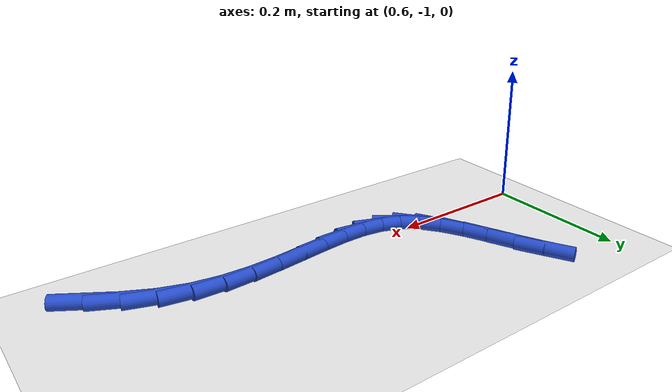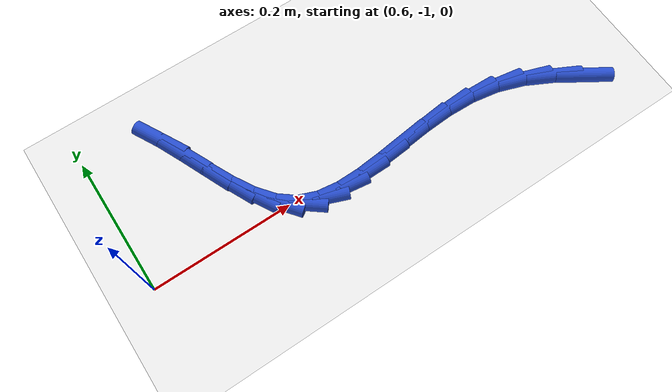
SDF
<sdf version="1.6">
 <world name="default">
  <model name="ground_plane">
   <static>1</static>
   <link name="link">
    <collision name="collision">
     <geometry><plane><normal>0 0 1</normal><size>100 100</size></plane></geometry>
     <surface><friction><ode><mu>100</mu><mu2>50</mu2></ode></friction></surface>
    </collision>
    <visual name="visual">
     <cast_shadows>0</cast_shadows>
     <geometry><plane><normal>0 0 1</normal><size>100 100</size></plane></geometry>
     <material>
      <script><uri>file://media/materials/scripts/gazebo.material</uri><name>Gazebo/WhiteGlow</name></script>
     </material>
    </visual>
   </link>
  </model>
  <model name="line">
   <link name="link_168">
    <pose>1.2371180685750918 -1.0694385882261097 0.01 0 1.57 -0.5667334398582143</pose>
    <collision name="collision">
     <geometry><cylinder><radius>0.01</radius><length>0.08</length></cylinder></geometry>
    </collision>
    <visual name="visual">
     <material>
      <script><name>Gazebo/Blue</name><uri>file://media/materials/scripts/gazebo.material</uri></script>
     </material>
     <geometry><cylinder><radius>0.01</radius><length>0.08</length></cylinder></geometry>
    </visual>
   </link>
   <link name="link_169">
    <pose>1.2016338818732137 -1.046857531643033 0.01 0 1.57 -0.47358492006604963</pose>
    <collision name="collision">
     <geometry><cylinder><radius>0.01</radius><length>0.08</length></cylinder></geometry>
    </collision>
    <visual name="visual">
     <material>
      <script><name>Gazebo/Blue</name><uri>file://media/materials/scripts/gazebo.material</uri></script>
     </material>
     <geometry><cylinder><radius>0.01</radius><length>0.08</length></cylinder></geometry>
    </visual>
   </link>
   <link name="link_170">
    <pose>1.164821176285078 -1.027991606129477 0.01 0 1.57 -0.33101073622938765</pose>
    <collision name="collision">
     <geometry><cylinder><radius>0.01</radius><length>0.08</length></cylinder></geometry>
    </collision>
    <visual name="visual">
     <material>
      <script><name>Gazebo/Blue</name><uri>file://media/materials/scripts/gazebo.material</uri></script>
     </material>
     <geometry><cylinder><radius>0.01</radius><length>0.08</length></cylinder></geometry>
    </visual>
   </link>
   <link name="link_171">
    <pose>1.1268051876013183 -1.0149272375755143 0.01 0 1.57 -0.16610724915910813</pose>
    <collision name="collision">
     <geometry><cylinder><radius>0.01</radius><length>0.08</length></cylinder></geometry>
    </collision>
    <visual name="visual">
     <material>
      <script><name>Gazebo/Blue</name><uri>file://media/materials/scripts/gazebo.material</uri></script>
     </material>
     <geometry><cylinder><radius>0.01</radius><length>0.08</length></cylinder></geometry>
    </visual>
   </link>
   <link name="link_172">
    <pose>1.0878688258844813 -1.0083994777604302 0.01 0 1.57 -0.03561021170059711</pose>
    <collision name="collision">
     <geometry><cylinder><radius>0.01</radius><length>0.08</length></cylinder></geometry>
    </collision>
    <visual name="visual">
     <material>
      <script><name>Gazebo/Blue</name><uri>file://media/materials/scripts/gazebo.material</uri></script>
     </material>
     <geometry><cylinder><radius>0.01</radius><length>0.08</length></cylinder></geometry>
    </visual>
   </link>
   <link name="link_173">
    <pose>1.0485452516189613 -1.0069985647460007 0.01 0 1.57 0.05423503588421184</pose>
    <collision name="collision">
     <geometry><cylinder><radius>0.01</radius><length>0.08</length></cylinder></geometry>
    </collision>
    <visual name="visual">
     <material>
      <script><name>Gazebo/Blue</name><uri>file://media/materials/scripts/gazebo.material</uri></script>
     </material>
     <geometry><cylinder><radius>0.01</radius><length>0.08</length></cylinder></geometry>
    </visual>
   </link>
   <link name="link_174">
    <pose>1.009389851407325 -1.0091242438756018 0.01 0 1.57 0.1050457523491115</pose>
    <collision name="collision">
     <geometry><cylinder><radius>0.01</radius><length>0.08</length></cylinder></geometry>
    </collision>
    <visual name="visual">
     <material>
      <script><name>Gazebo/Blue</name><uri>file://media/materials/scripts/gazebo.material</uri></script>
     </material>
     <geometry><cylinder><radius>0.01</radius><length>0.08</length></cylinder></geometry>
    </visual>
   </link>
   <link name="link_175">
    <pose>0.9709580118521355 -1.013176260492609 0.01 0 1.57 0.1172991170142221</pose>
    <collision name="collision">
     <geometry><cylinder><radius>0.01</radius><length>0.08</length></cylinder></geometry>
    </collision>
    <visual name="visual">
     <material>
      <script><name>Gazebo/Blue</name><uri>file://media/materials/scripts/gazebo.material</uri></script>
     </material>
     <geometry><cylinder><radius>0.01</radius><length>0.08</length></cylinder></geometry>
    </visual>
   </link>
   <link name="link_176">
    <pose>0.9338051195559578 -1.0175543599403971 0.01 0 1.57 0.08765854184345964</pose>
    <collision name="collision">
     <geometry><cylinder><radius>0.01</radius><length>0.08</length></cylinder></geometry>
    </collision>
    <visual name="visual">
     <material>
      <script><name>Gazebo/Blue</name><uri>file://media/materials/scripts/gazebo.material</uri></script>
     </material>
     <geometry><cylinder><radius>0.01</radius><length>0.08</length></cylinder></geometry>
    </visual>
   </link>
   <link name="link_177">
    <pose>0.8984865611213566 -1.020658287562342 0.01 0 1.57 0.006969496577747831</pose>
    <collision name="collision">
     <geometry><cylinder><radius>0.01</radius><length>0.08</length></cylinder></geometry>
    </collision>
    <visual name="visual">
     <material>
      <script><name>Gazebo/Blue</name><uri>file://media/materials/scripts/gazebo.material</uri></script>
     </material>
     <geometry><cylinder><radius>0.01</radius><length>0.08</length></cylinder></geometry>
    </visual>
   </link>
   <link name="link_178">
    <pose>0.8655577231508954 -1.0208877887018188 0.01 0 1.57 -0.14064795756917328</pose>
    <collision name="collision">
     <geometry><cylinder><radius>0.01</radius><length>0.08</length></cylinder></geometry>
    </collision>
    <visual name="visual">
     <material>
      <script><name>Gazebo/Blue</name><uri>file://media/materials/scripts/gazebo.material</uri></script>
     </material>
     <geometry><cylinder><radius>0.01</radius><length>0.08</length></cylinder></geometry>
    </visual>
   </link>
   <link name="link_179">
    <pose>0.835573992247141 -1.0166426087022034 0.01 0 1.57 -0.37158248320463105</pose>
    <collision name="collision">
     <geometry><cylinder><radius>0.01</radius><length>0.08</length></cylinder></geometry>
    </collision>
    <visual name="visual">
     <material>
      <script><name>Gazebo/Blue</name><uri>file://media/materials/scripts/gazebo.material</uri></script>
     </material>
     <geometry><cylinder><radius>0.01</radius><length>0.08</length></cylinder></geometry>
    </visual>
   </link>
   <link name="link_180">
    <pose>0.8090907550126568 -1.0063224929068708 0.01 0 1.57 -0.667777722024221</pose>
    <collision name="collision">
     <geometry><cylinder><radius>0.01</radius><length>0.08</length></cylinder></geometry>
    </collision>
    <visual name="visual">
     <material>
      <script><name>Gazebo/Blue</name><uri>file://media/materials/scripts/gazebo.material</uri></script>
     </material>
     <geometry><cylinder><radius>0.01</radius><length>0.08</length></cylinder></geometry>
    </visual>
   </link>
   <link name="link_181">
    <pose>0.7865551967964574 -0.9885499736962424 0.01 0 1.57 -0.9104136472779676</pose>
    <collision name="collision">
     <geometry><cylinder><radius>0.01</radius><length>0.08</length></cylinder></geometry>
    </collision>
    <visual name="visual">
     <material>
      <script><name>Gazebo/Blue</name><uri>file://media/materials/scripts/gazebo.material</uri></script>
     </material>
     <geometry><cylinder><radius>0.01</radius><length>0.08</length></cylinder></geometry>
    </visual>
   </link>
   <link name="link_182">
    <pose>0.7674442800917726 -0.9639452781929231 0.01 0 1.57 -1.0589248400292381</pose>
    <collision name="collision">
     <geometry><cylinder><radius>0.01</radius><length>0.08</length></cylinder></geometry>
    </collision>
    <visual name="visual">
     <material>
      <script><name>Gazebo/Blue</name><uri>file://media/materials/scripts/gazebo.material</uri></script>
     </material>
     <geometry><cylinder><radius>0.01</radius><length>0.08</length></cylinder></geometry>
    </visual>
   </link>
   <link name="link_183">
    <pose>0.7507230748796424 -0.9341826233055457 0.01 0 1.57 -1.1376216815689892</pose>
    <collision name="collision">
     <geometry><cylinder><radius>0.01</radius><length>0.08</length></cylinder></geometry>
    </collision>
    <visual name="visual">
     <material>
      <script><name>Gazebo/Blue</name><uri>file://media/materials/scripts/gazebo.material</uri></script>
     </material>
     <geometry><cylinder><radius>0.01</radius><length>0.08</length></cylinder></geometry>
    </visual>
   </link>
   <link name="link_184">
    <pose>0.7353520384652259 -0.9009457234703422 0.01 0 1.57 -1.1647316329089166</pose>
    <collision name="collision">
     <geometry><cylinder><radius>0.01</radius><length>0.08</length></cylinder></geometry>
    </collision>
    <visual name="visual">
     <material>
      <script><name>Gazebo/Blue</name><uri>file://media/materials/scripts/gazebo.material</uri></script>
     </material>
     <geometry><cylinder><radius>0.01</radius><length>0.08</length></cylinder></geometry>
    </visual>
   </link>
   <link name="link_185">
    <pose>0.7202916281536823 -0.8659182931235462 0.01 0 1.57 -1.1484415546030837</pose>
    <collision name="collision">
     <geometry><cylinder><radius>0.01</radius><length>0.08</length></cylinder></geometry>
    </collision>
    <visual name="visual">
     <material>
      <script><name>Gazebo/Blue</name><uri>file://media/materials/scripts/gazebo.material</uri></script>
     </material>
     <geometry><cylinder><radius>0.01</radius><length>0.08</length></cylinder></geometry>
    </visual>
   </link>
   <link name="link_186">
    <pose>0.7045023012501713 -0.8307840467013896 0.01 0 1.57 -1.0887478347074373</pose>
    <collision name="collision">
     <geometry><cylinder><radius>0.01</radius><length>0.08</length></cylinder></geometry>
    </collision>
    <visual name="visual">
     <material>
      <script><name>Gazebo/Blue</name><uri>file://media/materials/scripts/gazebo.material</uri></script>
     </material>
     <geometry><cylinder><radius>0.01</radius><length>0.08</length></cylinder></geometry>
    </visual>
   </link>
  </model>
 </world>
</sdf>
